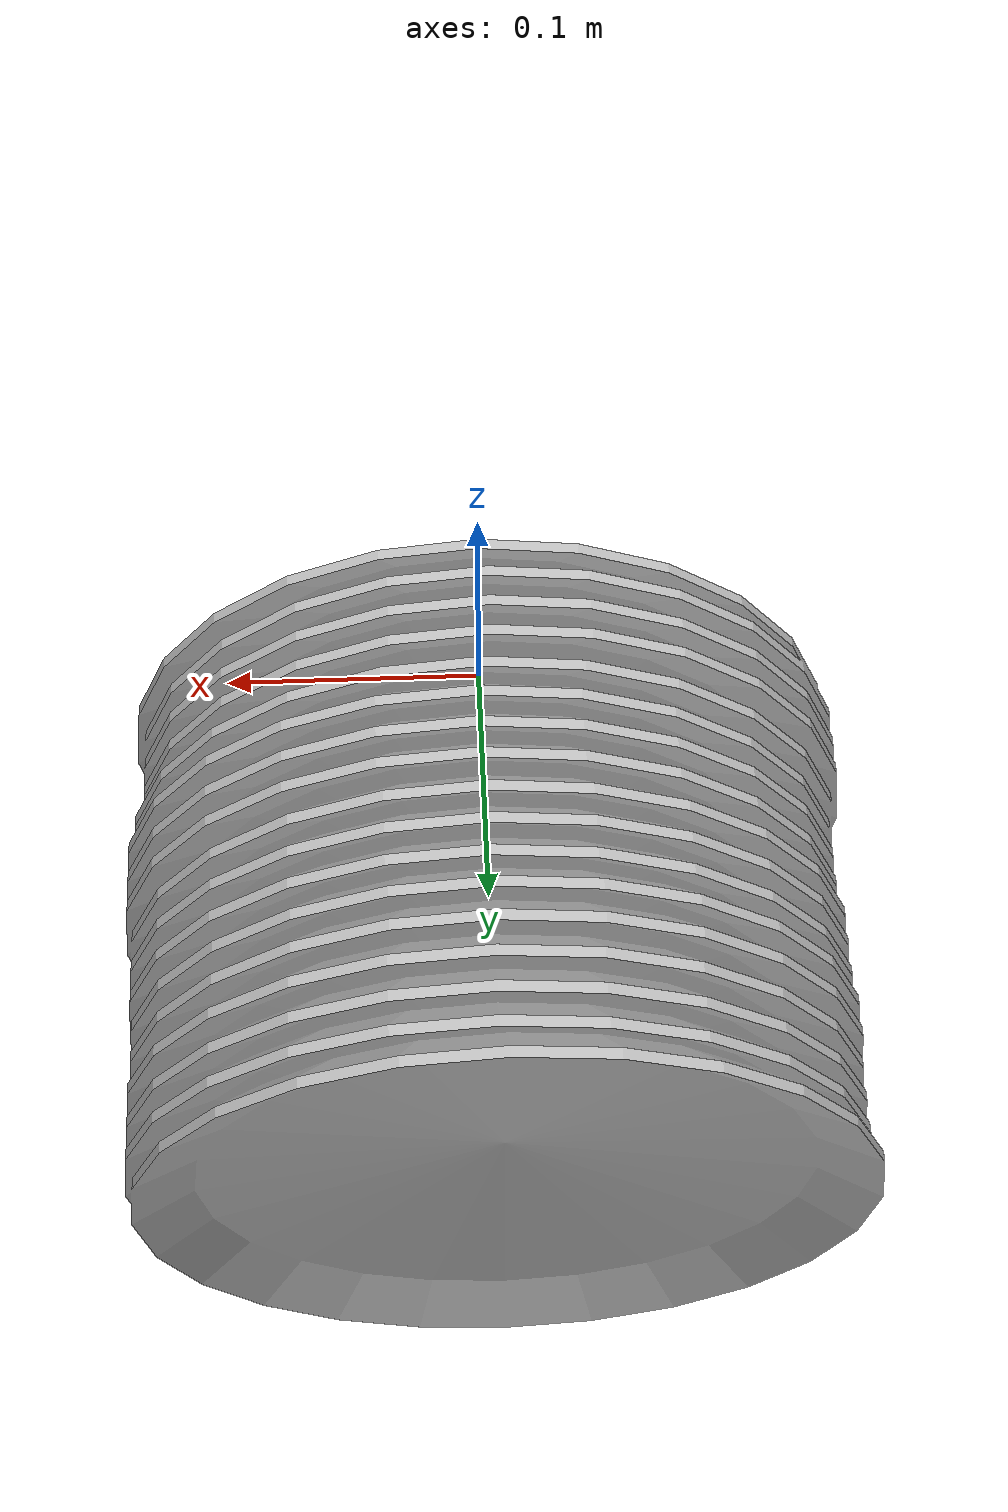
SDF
<?xml version="1.0" ?>
<sdf version="1.4">
  <model name="shelf2_dish2_1">
    <link name="body">
      <pose>0 0 0 0 0 0</pose>
      <inertial>
        <pose>   0.000529   0.113259  -0.000529 0 0 0</pose>
        <mass>0.5</mass>
        <inertia>
          <ixx>0.01</ixx>
          <ixy>0</ixy>
          <ixz>0</ixz>
          <iyy>0.01</iyy>
          <iyz>0</iyz>
          <izz>0.01</izz>
        </inertia>
      </inertial>
      <collision name="collision">
        <geometry>
          <mesh>
            <uri>model://bookshelf/shelf2_items/dish2_1/dish2_1.dae</uri>
          </mesh>
        </geometry>
      </collision>
      <visual name="visual">
        <geometry>
          <mesh>
            <uri>model://bookshelf/shelf2_items/dish2_1/dish2_1.dae</uri>
          </mesh>
        </geometry>
      </visual>
    </link>
  </model>
</sdf>
